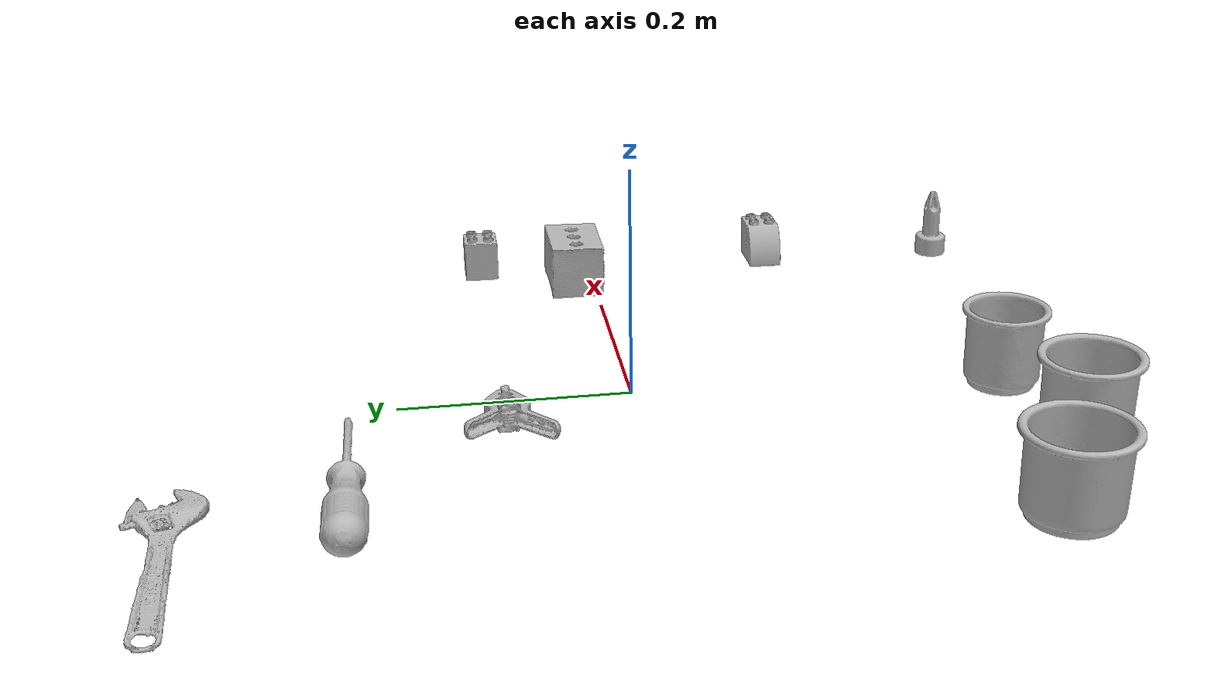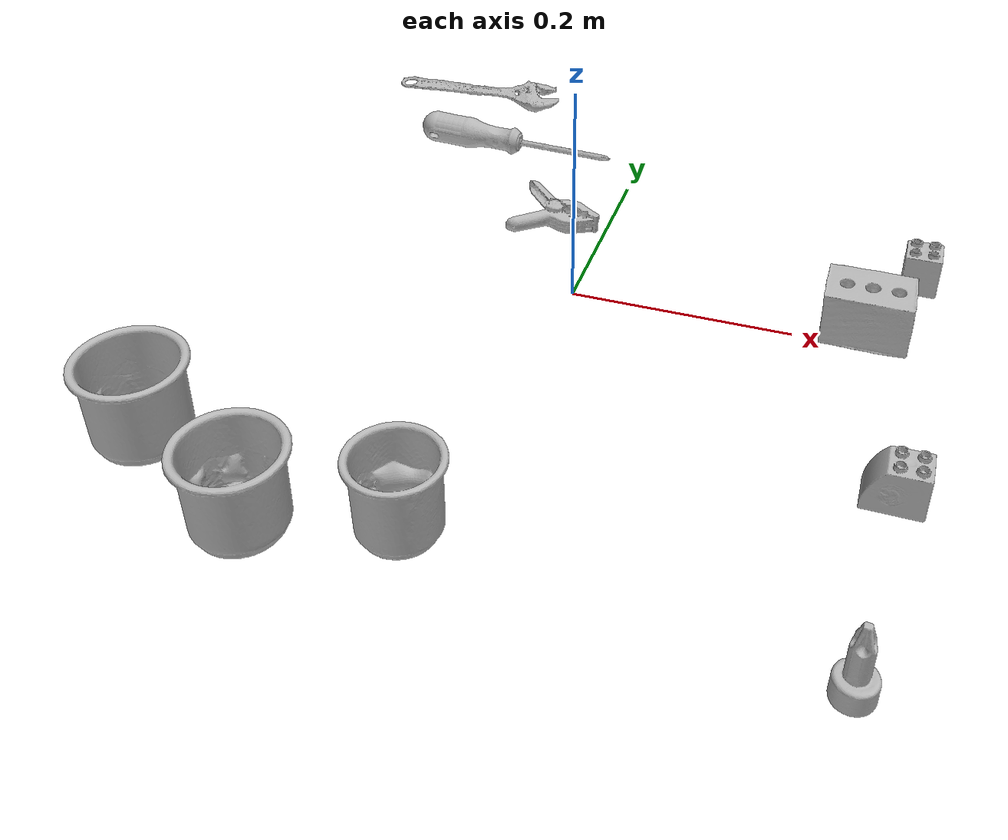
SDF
<?xml version="1.0" ?>
<sdf version="1.4">
  <world name="default">
    <light name="light1" type="point">
      <pose>0 0 1 0 0 0</pose>
      <diffuse>3 3 3 1</diffuse>
      <specular>3 3 3 1</specular>
    </light>
    <light name="light2" type="point">
      <pose>0 0.5 2 0 0 0</pose>
      <diffuse>1 1 1 1</diffuse>
      <specular>1 1 1 1</specular>
    </light>
    <light name="light3" type="point">
      <pose>0 0.5 2 0 0 0</pose>
      <diffuse>3 3 3 1</diffuse>
      <specular>3 3 3 1</specular>
    </light>
    <scene>
      <ambient>0.7 0.7 0.7</ambient>
    </scene>
    <model name="cup1">
      <link name="link_cup1">
        <collision name="default">
          <geometry>
            <mesh>
              <uri>model://h_cups/collision_meshes/collision.obj</uri>
              <scale>1.0 1.0 1.0</scale>
            </mesh>
          </geometry>
          <surface>
            <friction>
              <ode>
                <mu>0.5</mu>
                <mu2>0.5</mu2>
              </ode>
            </friction>
          </surface>
        </collision>
        <visual name="default">
          <geometry>
            <mesh>
              <uri>model://h_cups/visual_meshes/visual.dae</uri>
              <scale>1.0 1.0 1.0</scale>
            </mesh>
          </geometry>
        </visual>
        <inertial>
          <mass>0.09017354249954224</mass>
          <pose>-2.702734127524309e-05 0.00023018653155304492 -0.0018405391601845622 -0.024362361674121313 0.06545247408237653 0.12884890922354367</pose>
          <inertia>
            <ixx>0.00011645493</ixx>
            <iyy>0.000115065246</iyy>
            <izz>0.00012212929</izz>
            <ixy>0</ixy>
            <ixz>0</ixz>
            <iyz>0</iyz>
          </inertia>
        </inertial>
      </link>
      <pose>-0.2600610554218292 -0.2900002896785736 0.037758007645606995 3.697349470466619e-07 2.5692868681666206e-07 -5.526816269908901e-07</pose>
    </model>
    <model name="cup2">
      <link name="link_cup2">
        <collision name="default">
          <geometry>
            <mesh>
              <uri>model://g_cups/collision_meshes/collision.obj</uri>
              <scale>1.0 1.0 1.0</scale>
            </mesh>
          </geometry>
          <surface>
            <friction>
              <ode>
                <mu>0.5</mu>
                <mu2>0.5</mu2>
              </ode>
            </friction>
          </surface>
        </collision>
        <visual name="default">
          <geometry>
            <mesh>
              <uri>model://g_cups/visual_meshes/visual.dae</uri>
              <scale>1.0 1.0 1.0</scale>
            </mesh>
          </geometry>
        </visual>
        <inertial>
          <mass>0.07892031967639923</mass>
          <pose>-0.0007946275873109698 -4.206384619465098e-05 -0.0021329368464648724 -0.21381953376637775 -0.31410844314425407 0.31119468358147234</pose>
          <inertia>
            <ixx>9.211769e-05</ixx>
            <iyy>9.180432e-05</iyy>
            <izz>9.541806e-05</izz>
            <ixy>0</ixy>
            <ixz>0</ixz>
            <iyz>0</iyz>
          </inertia>
        </inertial>
      </link>
      <pose>-0.13998201489448547 -0.3500015437602997 0.037202995270490646 2.980233745897005e-08 -2.272426786742533e-07 -1.6391275697858805e-07</pose>
    </model>
    <model name="cup3">
      <link name="link_cup3">
        <collision name="default">
          <geometry>
            <mesh>
              <uri>model://e_cups/collision_meshes/collision.obj</uri>
              <scale>1.0 1.0 1.0</scale>
            </mesh>
          </geometry>
          <surface>
            <friction>
              <ode>
                <mu>0.5</mu>
                <mu2>0.5</mu2>
              </ode>
            </friction>
          </surface>
        </collision>
        <visual name="default">
          <geometry>
            <mesh>
              <uri>model://e_cups/visual_meshes/visual.dae</uri>
              <scale>1.0 1.0 1.0</scale>
            </mesh>
          </geometry>
        </visual>
        <inertial>
          <mass>0.08743876963853836</mass>
          <pose>0.0011355745373293757 0.0028797851409763098 -0.0038829741533845663 0.6952398618358687 0.08767880823198544 -0.5235243888876825</pose>
          <inertia>
            <ixx>7.709911e-05</ixx>
            <iyy>8.05796e-05</iyy>
            <izz>7.3715666e-05</izz>
            <ixy>0</ixy>
            <ixz>0</ixz>
            <iyz>0</iyz>
          </inertia>
        </inertial>
      </link>
      <pose>-0.030003013089299202 -0.3199254870414734 0.035599902272224426 5.6020899080395924e-05 -7.088484383997256e-05 5.605333534056359e-07</pose>
    </model>
    <model name="toy1">
      <link name="link_toy1">
        <collision name="default">
          <geometry>
            <mesh>
              <uri>model://d_lego_duplo/collision_meshes/collision.obj</uri>
              <scale>1.0 1.0 1.0</scale>
            </mesh>
          </geometry>
          <surface>
            <friction>
              <ode>
                <mu>0.5</mu>
                <mu2>0.5</mu2>
              </ode>
            </friction>
          </surface>
        </collision>
        <visual name="default">
          <geometry>
            <mesh>
              <uri>model://d_lego_duplo/visual_meshes/visual.dae</uri>
              <scale>1.0 1.0 1.0</scale>
            </mesh>
          </geometry>
        </visual>
        <inertial>
          <mass>0.04292278364300728</mass>
          <pose>0.002830562647432089 0.00016366151976399124 0.0008589805802330375 0.08010895821025366 -0.3835521883517419 0.0010296961053417666</pose>
          <inertia>
            <ixx>8.309218e-06</ixx>
            <iyy>1.1793034e-05</iyy>
            <izz>1.1372727e-05</izz>
            <ixy>0</ixy>
            <ixz>0</ixz>
            <iyz>0</iyz>
          </inertia>
        </inertial>
      </link>
      <pose>0.2999754846096039 -0.18010452389717102 0.02173999696969986 -2.8777868275789145e-07 -2.543666634269304e-08 5.662441290263182e-07</pose>
    </model>
    <model name="toy2">
      <link name="link_toy2">
        <collision name="default">
          <geometry>
            <mesh>
              <uri>model://foam_brick/collision_meshes/collision.obj</uri>
              <scale>1.0 1.0 1.0</scale>
            </mesh>
          </geometry>
          <surface>
            <friction>
              <ode>
                <mu>0.5</mu>
                <mu2>0.5</mu2>
              </ode>
            </friction>
          </surface>
        </collision>
        <visual name="default">
          <geometry>
            <mesh>
              <uri>model://foam_brick/visual_meshes/visual.dae</uri>
              <scale>1.0 1.0 1.0</scale>
            </mesh>
          </geometry>
        </visual>
        <inertial>
          <mass>0.21218973398208618</mass>
          <pose>-0.0002522472059354186 0.00034584320383146405 -0.0002532101352699101 -0.2940188212014215 0.017274433063530492 -0.0007449861184219897</pose>
          <inertia>
            <ixx>9.268843e-05</ixx>
            <iyy>0.00014798183</iyy>
            <izz>0.00014986254</izz>
            <ixy>0</ixy>
            <ixz>0</ixz>
            <iyz>0</iyz>
          </inertia>
        </inertial>
      </link>
      <pose>0.2602614462375641 0.019407078623771667 0.025917520746588707 0.013816535568302623 0.004276172610200033 0.00017081978610029966</pose>
    </model>
    <model name="toy3">
      <link name="link_toy3">
        <collision name="default">
          <geometry>
            <mesh>
              <uri>model://f_lego_duplo/collision_meshes/collision.obj</uri>
              <scale>1.0 1.0 1.0</scale>
            </mesh>
          </geometry>
          <surface>
            <friction>
              <ode>
                <mu>0.5</mu>
                <mu2>0.5</mu2>
              </ode>
            </friction>
          </surface>
        </collision>
        <visual name="default">
          <geometry>
            <mesh>
              <uri>model://f_lego_duplo/visual_meshes/visual.dae</uri>
              <scale>1.0 1.0 1.0</scale>
            </mesh>
          </geometry>
        </visual>
        <inertial>
          <mass>0.024021470919251442</mass>
          <pose>2.3694197807344608e-05 0.00013393140397965908 0.0018837875686585903 0.02983869554967358 -0.014424868856459862 -0.6756716113514201</pose>
          <inertia>
            <ixx>5.075869e-06</ixx>
            <iyy>5.1210886e-06</iyy>
            <izz>4.4060694e-06</izz>
            <ixy>0</ixy>
            <ixz>0</ixz>
            <iyz>0</iyz>
          </inertia>
        </inertial>
      </link>
      <pose>0.2999967634677887 0.10993768274784088 0.021870985627174377 3.953606018808795e-06 1.1245772097355954e-05 -0.0009685827100874039</pose>
    </model>
    <model name="toy4">
      <link name="link_toy4">
        <collision name="default">
          <geometry>
            <mesh>
              <uri>model://d_toy_airplane/collision_meshes/collision.obj</uri>
              <scale>1.0 1.0 1.0</scale>
            </mesh>
          </geometry>
          <surface>
            <friction>
              <ode>
                <mu>0.5</mu>
                <mu2>0.5</mu2>
              </ode>
            </friction>
          </surface>
        </collision>
        <visual name="default">
          <geometry>
            <mesh>
              <uri>model://d_toy_airplane/visual_meshes/visual.dae</uri>
              <scale>1.0 1.0 1.0</scale>
            </mesh>
          </geometry>
        </visual>
        <inertial>
          <mass>0.024586454033851624</mass>
          <pose>9.410288475919515e-05 -5.809331560158171e-05 -0.011728096753358841 0.0002662237897190017 0.004679022855495211 0.5193045098973154</pose>
          <inertia>
            <ixx>7.370539e-06</ixx>
            <iyy>7.376099e-06</iyy>
            <izz>2.2252145e-06</izz>
            <ixy>0</ixy>
            <ixz>0</ixz>
            <iyz>0</iyz>
          </inertia>
        </inertial>
      </link>
      <pose>0.29000622034072876 -0.3599690794944763 0.03333888575434685 3.364247113729653e-05 -0.00011435318302497452 7.623371169679506e-07</pose>
    </model>
    <model name="hardware1">
      <link name="link_hardware1">
        <collision name="default">
          <geometry>
            <mesh>
              <uri>model://phillips_screwdriver/collision_meshes/collision.obj</uri>
              <scale>1.0 1.0 1.0</scale>
            </mesh>
          </geometry>
          <surface>
            <friction>
              <ode>
                <mu>0.5</mu>
                <mu2>0.5</mu2>
              </ode>
            </friction>
          </surface>
        </collision>
        <visual name="default">
          <geometry>
            <mesh>
              <uri>model://phillips_screwdriver/visual_meshes/visual.dae</uri>
              <scale>1.0 1.0 1.0</scale>
            </mesh>
          </geometry>
        </visual>
        <inertial>
          <mass>0.10962587594985962</mass>
          <pose>-0.04777182266116142 0.0010362300090491772 -0.00045555492397397757 -0.1572763288958183 0.005850995451121224 -0.002156747064170485</pose>
          <inertia>
            <ixx>1.2879916e-05</ixx>
            <iyy>0.00016149164</iyy>
            <izz>0.00016162884</izz>
            <ixy>0</ixy>
            <ixz>0</ixz>
            <iyz>0</iyz>
          </inertia>
        </inertial>
      </link>
      <pose>-0.1421809196472168 0.23796364665031433 0.015409650281071663 0.06560547369612861 0.03756755017473582 0.0017176588285399497</pose>
    </model>
    <model name="hardware2">
      <link name="link_hardware2">
        <collision name="default">
          <geometry>
            <mesh>
              <uri>model://adjustable_wrench/collision_meshes/collision.obj</uri>
              <scale>1.0 1.0 1.0</scale>
            </mesh>
          </geometry>
          <surface>
            <friction>
              <ode>
                <mu>0.5</mu>
                <mu2>0.5</mu2>
              </ode>
            </friction>
          </surface>
        </collision>
        <visual name="default">
          <geometry>
            <mesh>
              <uri>model://adjustable_wrench/visual_meshes/visual.dae</uri>
              <scale>1.0 1.0 1.0</scale>
            </mesh>
          </geometry>
        </visual>
        <inertial>
          <mass>0.02999398298561573</mass>
          <pose>0.03740980848670006 -0.002896887483075261 -0.001114922808483243 -0.014473357351062987 0.006656019865341655 -0.010954188906160397</pose>
          <inertia>
            <ixx>6.138701e-06</ixx>
            <iyy>7.184631e-05</iyy>
            <izz>7.765895e-05</izz>
            <ixy>0</ixy>
            <ixz>0</ixz>
            <iyz>0</iyz>
          </inertia>
        </inertial>
      </link>
      <pose>-0.22636356949806213 0.3708518147468567 0.0061250412836670876 0.04675918101857843 -0.029270565156438843 -0.0006237383784353582</pose>
    </model>
    <model name="hardware3">
      <link name="link_hardware3">
        <collision name="default">
          <geometry>
            <mesh>
              <uri>model://medium_clamp/collision_meshes/collision.obj</uri>
              <scale>1.0 1.0 1.0</scale>
            </mesh>
          </geometry>
          <surface>
            <friction>
              <ode>
                <mu>0.5</mu>
                <mu2>0.5</mu2>
              </ode>
            </friction>
          </surface>
        </collision>
        <visual name="default">
          <geometry>
            <mesh>
              <uri>model://medium_clamp/visual_meshes/visual.dae</uri>
              <scale>1.0 1.0 1.0</scale>
            </mesh>
          </geometry>
        </visual>
        <inertial>
          <mass>0.038817502558231354</mass>
          <pose>0.005390993785113096 0.0003953237028326839 -0.0001222158462041989 -0.0012269117309439718 0.002584502422387493 0.03820772500943274</pose>
          <inertia>
            <ixx>1.05752815e-05</ixx>
            <iyy>1.539003e-05</iyy>
            <izz>2.3705257e-05</izz>
            <ixy>0</ixy>
            <ixz>0</ixz>
            <iyz>0</iyz>
          </inertia>
        </inertial>
      </link>
      <pose>-0.05262000858783722 0.10865947604179382 0.013533849269151688 0.07692879764328171 0.0854580824015107 0.006613174029815937</pose>
    </model>
  </world>
</sdf>
